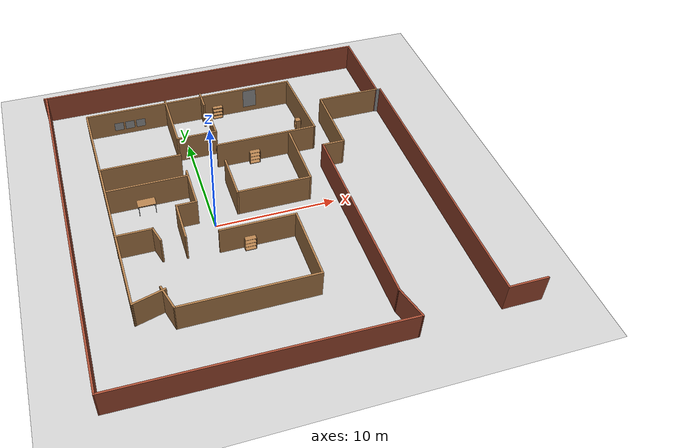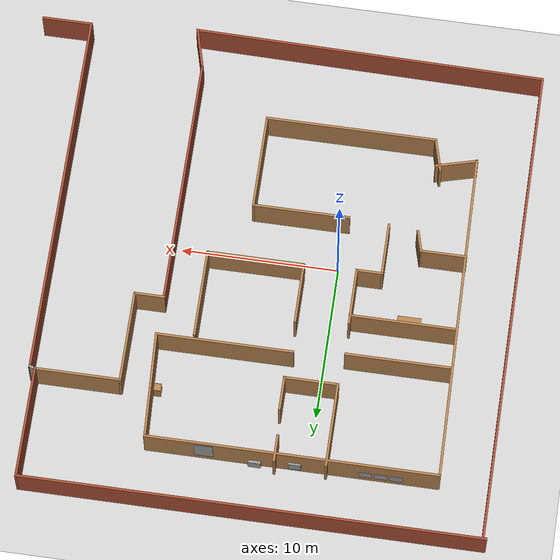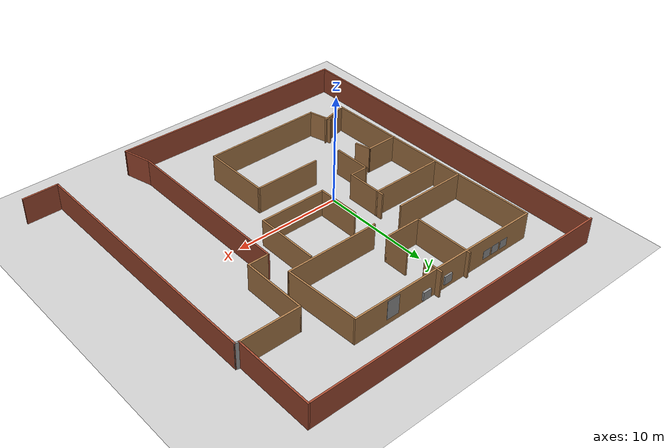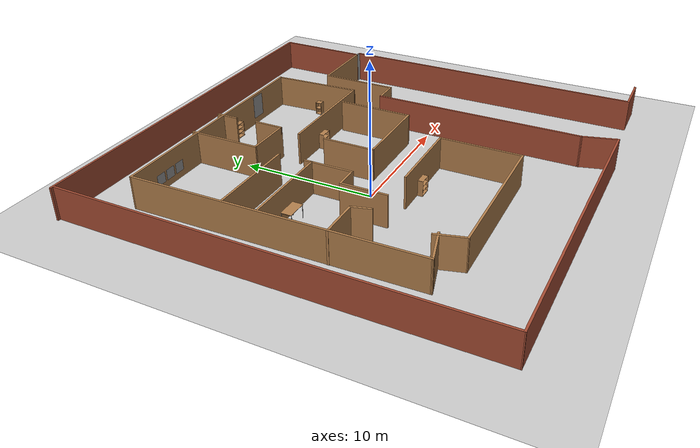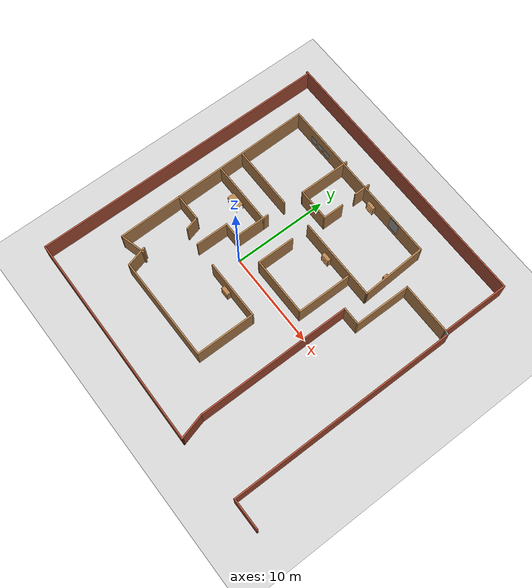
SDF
<sdf version="1.7">
 <world name="default">
  <light name="sun" type="directional">
   <pose>0 0 10 0 -0 0</pose>
   <diffuse>0.8 0.8 0.8 1</diffuse>
   <specular>0.2 0.2 0.2 1</specular>
   <attenuation>
    <range>1000</range>
    <constant>0.9</constant>
    <linear>0.01</linear>
    <quadratic>0.001</quadratic>
   </attenuation>
   <direction>-0.5 0.1 -0.9</direction>
   <spot><inner_angle>0</inner_angle><outer_angle>0</outer_angle><falloff>0</falloff></spot>
  </light>
  <model name="ground_plane">
   <static>1</static>
   <link name="link">
    <collision name="collision">
     <geometry><plane><normal>0 0 1</normal><size>100 100</size></plane></geometry>
     <surface><friction><ode><mu>100</mu><mu2>50</mu2></ode></friction></surface>
    </collision>
    <visual name="visual">
     <cast_shadows>0</cast_shadows>
     <geometry><plane><normal>0 0 1</normal><size>100 100</size></plane></geometry>
     <material>
      <script><uri>file://media/materials/scripts/gazebo.material</uri><name>Gazebo/Grey</name></script>
     </material>
    </visual>
   </link>
  </model>
  <gravity>0 0 -9.8</gravity>
  <magnetic_field>6e-06 2.3e-05 -4.2e-05</magnetic_field>
  <atmosphere type="adiabatic"/>
  <physics type="ode">
   <max_step_size>0.001</max_step_size>
   <real_time_factor>1</real_time_factor>
   <real_time_update_rate>1000</real_time_update_rate>
  </physics>
  <scene><ambient>0.4 0.4 0.4 1</ambient><background>0.7 0.7 0.7 1</background><shadows>1</shadows></scene>
  <audio><device>default</device></audio>
  <spherical_coordinates>
   <surface_model>EARTH_WGS84</surface_model>
   <latitude_deg>0</latitude_deg>
   <longitude_deg>0</longitude_deg>
   <elevation>0</elevation>
   <heading_deg>0</heading_deg>
  </spherical_coordinates>
  <model name="just">
   <pose>4.80824 1.42703 0 0 -0 0</pose>
   <link name="Wall_0">
    <collision name="Wall_0_Collision">
     <geometry><box><size>31.25 0.15 2.5</size></box></geometry>
     <pose>0 0 1.25 0 -0 0</pose>
    </collision>
    <visual name="Wall_0_Visual">
     <pose>0 0 1.25 0 -0 0</pose>
     <geometry><box><size>31.25 0.15 2.5</size></box></geometry>
     <material>
      <script><uri>file://media/materials/scripts/gazebo.material</uri><name>Gazebo/Bricks</name></script>
      <ambient>1 1 1 1</ambient>
     </material>
     <meta><layer>0</layer></meta>
    </visual>
    <pose>-16.0957 0.111377 0 0 -0 -1.5708</pose>
   </link>
   <link name="Wall_1">
    <collision name="Wall_1_Collision">
     <geometry><box><size>22.5521 0.15 2.5</size></box></geometry>
     <pose>0 0 1.25 0 -0 0</pose>
    </collision>
    <visual name="Wall_1_Visual">
     <pose>0 0 1.25 0 -0 0</pose>
     <geometry><box><size>22.5521 0.15 2.5</size></box></geometry>
     <material>
      <script><uri>file://media/materials/scripts/gazebo.material</uri><name>Gazebo/Bricks</name></script>
      <ambient>1 1 1 1</ambient>
     </material>
     <meta><layer>0</layer></meta>
    </visual>
    <pose>-4.89589 -15.6054 0 0 -0 -0.014894</pose>
   </link>
   <link name="Wall_10">
    <collision name="Wall_10_Collision">
     <geometry><box><size>0.5 0.15 2.5</size></box></geometry>
     <pose>0 0 1.25 0 -0 0</pose>
    </collision>
    <visual name="Wall_10_Visual">
     <pose>0 0 1.25 0 -0 0</pose>
     <geometry><box><size>0.5 0.15 2.5</size></box></geometry>
     <material>
      <script><uri>file://media/materials/scripts/gazebo.material</uri><name>Gazebo/Grey</name></script>
      <ambient>1 1 1 1</ambient>
     </material>
     <meta><layer>0</layer></meta>
    </visual>
    <pose>13 8.64384 0 0 -0 -0.261799</pose>
   </link>
   <link name="Wall_11">
    <collision name="Wall_11_Collision">
     <geometry><box><size>24 0.15 2.5</size></box></geometry>
     <pose>0 0 1.25 0 -0 0</pose>
    </collision>
    <visual name="Wall_11_Visual">
     <pose>0 0 1.25 0 -0 0</pose>
     <geometry><box><size>24 0.15 2.5</size></box></geometry>
     <material>
      <script><uri>file://media/materials/scripts/gazebo.material</uri><name>Gazebo/Bricks</name></script>
      <ambient>1 1 1 1</ambient>
     </material>
     <meta><layer>0</layer></meta>
    </visual>
    <pose>13.169 -3.32646 0 0 -0 -1.5708</pose>
   </link>
   <link name="Wall_12">
    <collision name="Wall_12_Collision">
     <geometry><box><size>3.25 0.15 2.5</size></box></geometry>
     <pose>0 0 1.25 0 -0 0</pose>
    </collision>
    <visual name="Wall_12_Visual">
     <pose>0 0 1.25 0 -0 0</pose>
     <geometry><box><size>3.25 0.15 2.5</size></box></geometry>
     <material>
      <script><uri>file://media/materials/scripts/gazebo.material</uri><name>Gazebo/Bricks</name></script>
      <ambient>1 1 1 1</ambient>
     </material>
     <meta><layer>0</layer></meta>
    </visual>
    <pose>14.719 -15.2515 0 0 -0 0</pose>
   </link>
   <link name="Wall_14">
    <collision name="Wall_14_Collision">
     <geometry><box><size>18.5 0.15 2.5</size></box></geometry>
     <pose>0 0 1.25 0 -0 0</pose>
    </collision>
    <visual name="Wall_14_Visual">
     <pose>0 0 1.25 0 -0 0</pose>
     <geometry><box><size>18.5 0.15 2.5</size></box></geometry>
     <material>
      <script><uri>file://media/materials/scripts/gazebo.material</uri><name>Gazebo/Wood</name></script>
      <ambient>1 1 1 1</ambient>
     </material>
     <meta><layer>0</layer></meta>
    </visual>
    <pose>-3.77839 12.1209 0 0 -0 0</pose>
   </link>
   <link name="Wall_15">
    <collision name="Wall_15_Collision">
     <geometry><box><size>6.82736 0.15 2.5</size></box></geometry>
     <pose>0 0 1.25 0 -0 0</pose>
    </collision>
    <visual name="Wall_15_Visual">
     <pose>0 0 1.25 0 -0 0</pose>
     <geometry><box><size>6.82736 0.15 2.5</size></box></geometry>
     <material>
      <script><uri>file://media/materials/scripts/gazebo.material</uri><name>Gazebo/Wood</name></script>
      <ambient>1 1 1 1</ambient>
     </material>
     <meta><layer>0</layer></meta>
    </visual>
    <pose>5.55803 8.67853 0 0 -0 -1.52243</pose>
   </link>
   <link name="Wall_16">
    <collision name="Wall_16_Collision">
     <geometry><box><size>8.75 0.15 2.5</size></box></geometry>
     <pose>0 0 1.25 0 -0 0</pose>
    </collision>
    <visual name="Wall_16_Visual">
     <pose>0 0 1.25 0 -0 0</pose>
     <geometry><box><size>8.75 0.15 2.5</size></box></geometry>
     <material>
      <script><uri>file://media/materials/scripts/gazebo.material</uri><name>Gazebo/Wood</name></script>
      <ambient>1 1 1 1</ambient>
     </material>
     <meta><layer>0</layer></meta>
    </visual>
    <pose>1.41945 5.34376 0 0 -0 3.14159</pose>
   </link>
   <link name="Wall_18">
    <collision name="Wall_18_Collision">
     <geometry><box><size>21.322 0.15 2.5</size></box></geometry>
     <pose>0 0 1.25 0 -0 0</pose>
    </collision>
    <visual name="Wall_18_Visual">
     <pose>0 0 1.25 0 -0 0</pose>
     <geometry><box><size>21.322 0.15 2.5</size></box></geometry>
     <material>
      <script><uri>file://media/materials/scripts/gazebo.material</uri><name>Gazebo/Wood</name></script>
      <ambient>1 1 1 1</ambient>
     </material>
     <meta><layer>0</layer></meta>
    </visual>
    <pose>-12.792 1.42853 0 0 -0 -1.55555</pose>
   </link>
   <link name="Wall_19">
    <collision name="Wall_19_Collision">
     <geometry><box><size>2.75 0.15 2.5</size></box></geometry>
     <pose>0 0 1.25 0 -0 0</pose>
    </collision>
    <visual name="Wall_19_Visual">
     <pose>0 0 1.25 0 -0 0</pose>
     <geometry><box><size>2.75 0.15 2.5</size></box></geometry>
     <material>
      <script><uri>file://media/materials/scripts/gazebo.material</uri><name>Gazebo/Wood</name></script>
      <ambient>1 1 1 1</ambient>
     </material>
     <meta><layer>0</layer></meta>
    </visual>
    <pose>-11.3748 -8.81978 0 0 -0 0.261799</pose>
   </link>
   <link name="Wall_2">
    <collision name="Wall_2_Collision">
     <geometry><box><size>2.75 0.15 2.5</size></box></geometry>
     <pose>0 0 1.25 0 -0 0</pose>
    </collision>
    <visual name="Wall_2_Visual">
     <pose>0 0 1.25 0 -0 0</pose>
     <geometry><box><size>2.75 0.15 2.5</size></box></geometry>
     <material>
      <script><uri>file://media/materials/scripts/gazebo.material</uri><name>Gazebo/Bricks</name></script>
      <ambient>1 1 1 1</ambient>
     </material>
     <meta><layer>0</layer></meta>
    </visual>
    <pose>5.96743 -14.5166 0 0 -0 1.8326</pose>
   </link>
   <link name="Wall_21">
    <collision name="Wall_21_Collision">
     <geometry><box><size>2.25 0.15 2.5</size></box></geometry>
     <pose>0 0 1.25 0 -0 0</pose>
    </collision>
    <visual name="Wall_21_Visual">
     <pose>0 0 1.25 0 -0 0</pose>
     <geometry><box><size>2.25 0.15 2.5</size></box></geometry>
     <material>
      <script><uri>file://media/materials/scripts/gazebo.material</uri><name>Gazebo/Wood</name></script>
      <ambient>1 1 1 1</ambient>
     </material>
     <meta><layer>0</layer></meta>
    </visual>
    <pose>-10.1312 -9.23747 0 0 -0 -1.309</pose>
   </link>
   <link name="Wall_22">
    <collision name="Wall_22_Collision">
     <geometry><box><size>11 0.15 2.5</size></box></geometry>
     <pose>0 0 1.25 0 -0 0</pose>
    </collision>
    <visual name="Wall_22_Visual">
     <pose>0 0 1.25 0 -0 0</pose>
     <geometry><box><size>11 0.15 2.5</size></box></geometry>
     <material>
      <script><uri>file://media/materials/scripts/gazebo.material</uri><name>Gazebo/Wood</name></script>
      <ambient>1 1 1 1</ambient>
     </material>
     <meta><layer>0</layer></meta>
    </visual>
    <pose>-4.43445 -10.2517 0 0 -0 0</pose>
   </link>
   <link name="Wall_23">
    <collision name="Wall_23_Collision">
     <geometry><box><size>6.25 0.15 2.5</size></box></geometry>
     <pose>0 0 1.25 0 -0 0</pose>
    </collision>
    <visual name="Wall_23_Visual">
     <pose>0 0 1.25 0 -0 0</pose>
     <geometry><box><size>6.25 0.15 2.5</size></box></geometry>
     <material>
      <script><uri>file://media/materials/scripts/gazebo.material</uri><name>Gazebo/Wood</name></script>
      <ambient>1 1 1 1</ambient>
     </material>
     <meta><layer>0</layer></meta>
    </visual>
    <pose>0.990551 -7.20169 0 0 -0 1.5708</pose>
   </link>
   <link name="Wall_24">
    <collision name="Wall_24_Collision">
     <geometry><box><size>6.25 0.15 2.5</size></box></geometry>
     <pose>0 0 1.25 0 -0 0</pose>
    </collision>
    <visual name="Wall_24_Visual">
     <pose>0 0 1.25 0 -0 0</pose>
     <geometry><box><size>6.25 0.15 2.5</size></box></geometry>
     <material>
      <script><uri>file://media/materials/scripts/gazebo.material</uri><name>Gazebo/Wood</name></script>
      <ambient>1 1 1 1</ambient>
     </material>
     <meta><layer>0</layer></meta>
    </visual>
    <pose>-2.05945 -4.15169 0 0 -0 3.14159</pose>
   </link>
   <link name="Wall_26">
    <collision name="Wall_26_Collision">
     <geometry><box><size>3.5 0.15 2.5</size></box></geometry>
     <pose>0 0 1.25 0 -0 0</pose>
    </collision>
    <visual name="Wall_26_Visual">
     <pose>0 0 1.25 0 -0 0</pose>
     <geometry><box><size>3.5 0.15 2.5</size></box></geometry>
     <material>
      <script><uri>file://media/materials/scripts/gazebo.material</uri><name>Gazebo/Wood</name></script>
      <ambient>1 1 1 1</ambient>
     </material>
     <meta><layer>0</layer></meta>
    </visual>
    <pose>-7.68037 -2.34059 0 0 -0 1.5708</pose>
   </link>
   <link name="Wall_27">
    <collision name="Wall_27_Collision">
     <geometry><box><size>1.75 0.15 2.5</size></box></geometry>
     <pose>0 0 1.25 0 -0 0</pose>
    </collision>
    <visual name="Wall_27_Visual">
     <pose>0 0 1.25 0 -0 0</pose>
     <geometry><box><size>1.75 0.15 2.5</size></box></geometry>
     <material>
      <script><uri>file://media/materials/scripts/gazebo.material</uri><name>Gazebo/Wood</name></script>
      <ambient>1 1 1 1</ambient>
     </material>
     <meta><layer>0</layer></meta>
    </visual>
    <pose>-6.88037 -0.665594 0 0 -0 0</pose>
   </link>
   <link name="Wall_28">
    <collision name="Wall_28_Collision">
     <geometry><box><size>3.75 0.15 2.5</size></box></geometry>
     <pose>0 0 1.25 0 -0 0</pose>
    </collision>
    <visual name="Wall_28_Visual">
     <pose>0 0 1.25 0 -0 0</pose>
     <geometry><box><size>3.75 0.15 2.5</size></box></geometry>
     <material>
      <script><uri>file://media/materials/scripts/gazebo.material</uri><name>Gazebo/Wood</name></script>
      <ambient>1 1 1 1</ambient>
     </material>
     <meta><layer>0</layer></meta>
    </visual>
    <pose>-6.08037 1.13441 0 0 -0 1.5708</pose>
   </link>
   <link name="Wall_3">
    <collision name="Wall_3_Collision">
     <geometry><box><size>16.25 0.15 2.5</size></box></geometry>
     <pose>0 0 1.25 0 -0 0</pose>
    </collision>
    <visual name="Wall_3_Visual">
     <pose>0 0 1.25 0 -0 0</pose>
     <geometry><box><size>16.25 0.15 2.5</size></box></geometry>
     <material>
      <script><uri>file://media/materials/scripts/gazebo.material</uri><name>Gazebo/Bricks</name></script>
      <ambient>1 1 1 1</ambient>
     </material>
     <meta><layer>0</layer></meta>
    </visual>
    <pose>5.63096 -5.21087 0 0 -0 1.5708</pose>
   </link>
   <link name="Wall_30">
    <collision name="Wall_30_Collision">
     <geometry><box><size>6.75 0.15 2.5</size></box></geometry>
     <pose>0 0 1.25 0 -0 0</pose>
    </collision>
    <visual name="Wall_30_Visual">
     <pose>0 0 1.25 0 -0 0</pose>
     <geometry><box><size>6.75 0.15 2.5</size></box></geometry>
     <material>
      <script><uri>file://media/materials/scripts/gazebo.material</uri><name>Gazebo/Wood</name></script>
      <ambient>1 1 1 1</ambient>
     </material>
     <meta><layer>0</layer></meta>
    </visual>
    <pose>-9.37156 2.41964 0 0 -0 3.14159</pose>
   </link>
   <link name="Wall_32">
    <collision name="Wall_32_Collision">
     <geometry><box><size>3 0.15 2.5</size></box></geometry>
     <pose>0 0 1.25 0 -0 0</pose>
    </collision>
    <visual name="Wall_32_Visual">
     <pose>0 0 1.25 0 -0 0</pose>
     <geometry><box><size>3 0.15 2.5</size></box></geometry>
     <material>
      <script><uri>file://media/materials/scripts/gazebo.material</uri><name>Gazebo/Wood</name></script>
      <ambient>1 1 1 1</ambient>
     </material>
     <meta><layer>0</layer></meta>
    </visual>
    <pose>-11.3293 -2.53054 0 0 -0 0</pose>
   </link>
   <link name="Wall_33">
    <collision name="Wall_33_Collision">
     <geometry><box><size>1.5 0.15 2.5</size></box></geometry>
     <pose>0 0 1.25 0 -0 0</pose>
    </collision>
    <visual name="Wall_33_Visual">
     <pose>0 0 1.25 0 -0 0</pose>
     <geometry><box><size>1.5 0.15 2.5</size></box></geometry>
     <material>
      <script><uri>file://media/materials/scripts/gazebo.material</uri><name>Gazebo/Wood</name></script>
      <ambient>1 1 1 1</ambient>
     </material>
     <meta><layer>0</layer></meta>
    </visual>
    <pose>-9.7296 -3.18254 0 0 -0 -1.309</pose>
   </link>
   <link name="Wall_35">
    <collision name="Wall_35_Collision">
     <geometry><box><size>6.75 0.15 2.5</size></box></geometry>
     <pose>0 0 1.25 0 -0 0</pose>
    </collision>
    <visual name="Wall_35_Visual">
     <pose>0 0 1.25 0 -0 0</pose>
     <geometry><box><size>6.75 0.15 2.5</size></box></geometry>
     <material>
      <script><uri>file://media/materials/scripts/gazebo.material</uri><name>Gazebo/Wood</name></script>
      <ambient>1 1 1 1</ambient>
     </material>
     <meta><layer>0</layer></meta>
    </visual>
    <pose>-9.4543 5.01849 0 0 -0 0</pose>
   </link>
   <link name="Wall_37">
    <collision name="Wall_37_Collision">
     <geometry><box><size>4 0.15 2.5</size></box></geometry>
     <pose>0 0 1.25 0 -0 0</pose>
    </collision>
    <visual name="Wall_37_Visual">
     <pose>0 0 1.25 0 -0 0</pose>
     <geometry><box><size>4 0.15 2.5</size></box></geometry>
     <material>
      <script><uri>file://media/materials/scripts/gazebo.material</uri><name>Gazebo/Wood</name></script>
      <ambient>1 1 1 1</ambient>
     </material>
     <meta><layer>0</layer></meta>
    </visual>
    <pose>-2.73019 1.36092 0 0 -0 -1.5708</pose>
   </link>
   <link name="Wall_38">
    <collision name="Wall_38_Collision">
     <geometry><box><size>6.25 0.15 2.5</size></box></geometry>
     <pose>0 0 1.25 0 -0 0</pose>
    </collision>
    <visual name="Wall_38_Visual">
     <pose>0 0 1.25 0 -0 0</pose>
     <geometry><box><size>6.25 0.15 2.5</size></box></geometry>
     <material>
      <script><uri>file://media/materials/scripts/gazebo.material</uri><name>Gazebo/Wood</name></script>
      <ambient>1 1 1 1</ambient>
     </material>
     <meta><layer>0</layer></meta>
    </visual>
    <pose>0.319812 -0.564077 0 0 -0 0</pose>
   </link>
   <link name="Wall_39">
    <collision name="Wall_39_Collision">
     <geometry><box><size>5.75 0.15 2.5</size></box></geometry>
     <pose>0 0 1.25 0 -0 0</pose>
    </collision>
    <visual name="Wall_39_Visual">
     <pose>0 0 1.25 0 -0 0</pose>
     <geometry><box><size>5.75 0.15 2.5</size></box></geometry>
     <material>
      <script><uri>file://media/materials/scripts/gazebo.material</uri><name>Gazebo/Wood</name></script>
      <ambient>1 1 1 1</ambient>
     </material>
     <meta><layer>0</layer></meta>
    </visual>
    <pose>3.36981 2.23592 0 0 -0 1.5708</pose>
   </link>
   <link name="Wall_4">
    <collision name="Wall_4_Collision">
     <geometry><box><size>2 0.15 2.5</size></box></geometry>
     <pose>0 0 1.25 0 -0 0</pose>
    </collision>
    <visual name="Wall_4_Visual">
     <pose>0 0 1.25 0 -0 0</pose>
     <geometry><box><size>2 0.15 2.5</size></box></geometry>
     <material>
      <script><uri>file://media/materials/scripts/gazebo.material</uri><name>Gazebo/Wood</name></script>
      <ambient>1 1 1 1</ambient>
     </material>
     <meta><layer>0</layer></meta>
    </visual>
    <pose>6.55596 2.83913 0 0 -0 0</pose>
   </link>
   <link name="Wall_41">
    <collision name="Wall_41_Collision">
     <geometry><box><size>5.5 0.15 2.5</size></box></geometry>
     <pose>0 0 1.25 0 -0 0</pose>
    </collision>
    <visual name="Wall_41_Visual">
     <pose>0 0 1.25 0 -0 0</pose>
     <geometry><box><size>5.5 0.15 2.5</size></box></geometry>
     <material>
      <script><uri>file://media/materials/scripts/gazebo.material</uri><name>Gazebo/Wood</name></script>
      <ambient>1 1 1 1</ambient>
     </material>
     <meta><layer>0</layer></meta>
    </visual>
    <pose>-5.94781 9.76876 0 0 -0 -1.5708</pose>
   </link>
   <link name="Wall_42">
    <collision name="Wall_42_Collision">
     <geometry><box><size>3.5 0.15 2.5</size></box></geometry>
     <pose>0 0 1.25 0 -0 0</pose>
    </collision>
    <visual name="Wall_42_Visual">
     <pose>0 0 1.25 0 -0 0</pose>
     <geometry><box><size>3.5 0.15 2.5</size></box></geometry>
     <material>
      <script><uri>file://media/materials/scripts/gazebo.material</uri><name>Gazebo/Wood</name></script>
      <ambient>1 1 1 1</ambient>
     </material>
     <meta><layer>0</layer></meta>
    </visual>
    <pose>-4.27281 7.09376 0 0 -0 0</pose>
   </link>
   <link name="Wall_43">
    <collision name="Wall_43_Collision">
     <geometry><box><size>2.25 0.15 2.5</size></box></geometry>
     <pose>0 0 1.25 0 -0 0</pose>
    </collision>
    <visual name="Wall_43_Visual">
     <pose>0 0 1.25 0 -0 0</pose>
     <geometry><box><size>2.25 0.15 2.5</size></box></geometry>
     <material>
      <script><uri>file://media/materials/scripts/gazebo.material</uri><name>Gazebo/Wood</name></script>
      <ambient>1 1 1 1</ambient>
     </material>
     <meta><layer>0</layer></meta>
    </visual>
    <pose>-2.59781 8.14376 0 0 -0 1.5708</pose>
   </link>
   <link name="Wall_45">
    <collision name="Wall_45_Collision">
     <geometry><box><size>1.75 0.15 2.5</size></box></geometry>
     <pose>0 0 1.25 0 -0 0</pose>
    </collision>
    <visual name="Wall_45_Visual">
     <pose>0 0 1.25 0 -0 0</pose>
     <geometry><box><size>1.75 0.15 2.5</size></box></geometry>
     <material>
      <script><uri>file://media/materials/scripts/gazebo.material</uri><name>Gazebo/Wood</name></script>
      <ambient>1 1 1 1</ambient>
     </material>
     <meta><layer>0</layer></meta>
    </visual>
    <pose>-2.73019 11.7675 0 0 -0 -1.5708</pose>
   </link>
   <link name="Wall_5">
    <collision name="Wall_5_Collision">
     <geometry><box><size>6 0.15 2.5</size></box></geometry>
     <pose>0 0 1.25 0 -0 0</pose>
    </collision>
    <visual name="Wall_5_Visual">
     <pose>0 0 1.25 0 -0 0</pose>
     <geometry><box><size>6 0.15 2.5</size></box></geometry>
     <material>
      <script><uri>file://media/materials/scripts/gazebo.material</uri><name>Gazebo/Wood</name></script>
      <ambient>1 1 1 1</ambient>
     </material>
     <meta><layer>0</layer></meta>
    </visual>
    <pose>7.48096 5.76413 0 0 -0 1.5708</pose>
   </link>
   <link name="Wall_6">
    <collision name="Wall_6_Collision">
     <geometry><box><size>5.5 0.15 2.5</size></box></geometry>
     <pose>0 0 1.25 0 -0 0</pose>
    </collision>
    <visual name="Wall_6_Visual">
     <pose>0 0 1.25 0 -0 0</pose>
     <geometry><box><size>5.5 0.15 2.5</size></box></geometry>
     <material>
      <script><uri>file://media/materials/scripts/gazebo.material</uri><name>Gazebo/Wood</name></script>
      <ambient>1 1 1 1</ambient>
     </material>
     <meta><layer>0</layer></meta>
    </visual>
    <pose>10.156 8.68913 0 0 -0 0</pose>
   </link>
   <link name="Wall_7">
    <collision name="Wall_7_Collision">
     <geometry><box><size>7.25 0.15 2.5</size></box></geometry>
     <pose>0 0 1.25 0 -0 0</pose>
    </collision>
    <visual name="Wall_7_Visual">
     <pose>0 0 1.25 0 -0 0</pose>
     <geometry><box><size>7.25 0.15 2.5</size></box></geometry>
     <material>
      <script><uri>file://media/materials/scripts/gazebo.material</uri><name>Gazebo/Bricks</name></script>
      <ambient>1 1 1 1</ambient>
     </material>
     <meta><layer>0</layer></meta>
    </visual>
    <pose>12.831 12.2391 0 0 -0 1.5708</pose>
   </link>
   <link name="Wall_8">
    <collision name="Wall_8_Collision">
     <geometry><box><size>29.25 0.15 2.5</size></box></geometry>
     <pose>0 0 1.25 0 -0 0</pose>
    </collision>
    <visual name="Wall_8_Visual">
     <pose>0 0 1.25 0 -0 0</pose>
     <geometry><box><size>29.25 0.15 2.5</size></box></geometry>
     <material>
      <script><uri>file://media/materials/scripts/gazebo.material</uri><name>Gazebo/Bricks</name></script>
      <ambient>1 1 1 1</ambient>
     </material>
     <meta><layer>0</layer></meta>
    </visual>
    <pose>-1.71904 15.7891 0 0 -0 3.14159</pose>
   </link>
   <link name="Window_1">
    <collision name="Window_1_Collision">
     <geometry><box><size>0.8 0.17 0.8</size></box></geometry>
     <pose>0 0 0.4 0 -0 0</pose>
    </collision>
    <visual name="Window_1_Visual">
     <pose>0 0 0.4 0 -0 0</pose>
     <geometry><box><size>0.8 0.17 0.8</size></box></geometry>
     <material>
      <script><uri>file://media/materials/scripts/gazebo.material</uri><name>Gazebo/Grey</name></script>
     </material>
    </visual>
    <pose>-10.3154 12.1291 0.5 0 -0 0</pose>
   </link>
   <link name="Window_2">
    <collision name="Window_2_Collision">
     <geometry><box><size>0.8 0.17 0.8</size></box></geometry>
     <pose>0 0 0.4 0 -0 0</pose>
    </collision>
    <visual name="Window_2_Visual">
     <pose>0 0 0.4 0 -0 0</pose>
     <geometry><box><size>0.8 0.17 0.8</size></box></geometry>
     <material>
      <script><uri>file://media/materials/scripts/gazebo.material</uri><name>Gazebo/Grey</name></script>
     </material>
    </visual>
    <pose>-9.34688 12.1291 0.5 0 -0 0</pose>
   </link>
   <link name="Window_3">
    <collision name="Window_3_Collision">
     <geometry><box><size>0.8 0.17 0.8</size></box></geometry>
     <pose>0 0 0.4 0 -0 0</pose>
    </collision>
    <visual name="Window_3_Visual">
     <pose>0 0 0.4 0 -0 0</pose>
     <geometry><box><size>0.8 0.17 0.8</size></box></geometry>
     <material>
      <script><uri>file://media/materials/scripts/gazebo.material</uri><name>Gazebo/Grey</name></script>
     </material>
    </visual>
    <pose>-8.37837 12.1291 0.5 0 -0 0</pose>
   </link>
   <link name="Window_4">
    <collision name="Window_4_Collision">
     <geometry><box><size>0.8 0.17 0.8</size></box></geometry>
     <pose>0 0 0.4 0 -0 0</pose>
    </collision>
    <visual name="Window_4_Visual">
     <pose>0 0 0.4 0 -0 0</pose>
     <geometry><box><size>0.8 0.17 0.8</size></box></geometry>
     <material>
      <script><uri>file://media/materials/scripts/gazebo.material</uri><name>Gazebo/Grey</name></script>
     </material>
    </visual>
    <pose>-3.96625 12.2367 0.5 0 -0 0</pose>
   </link>
   <link name="Window_5">
    <collision name="Window_5_Collision">
     <geometry><box><size>0.8 0.17 0.8</size></box></geometry>
     <pose>0 0 0.4 0 -0 0</pose>
    </collision>
    <visual name="Window_5_Visual">
     <pose>0 0 0.4 0 -0 0</pose>
     <geometry><box><size>0.8 0.17 0.8</size></box></geometry>
     <material>
      <script><uri>file://media/materials/scripts/gazebo.material</uri><name>Gazebo/Grey</name></script>
     </material>
    </visual>
    <pose>-1.49116 12.4519 0.5 0 -0 0</pose>
   </link>
   <link name="Window_6">
    <collision name="Window_6_Collision">
     <geometry><box><size>1.2 0.17 1.8</size></box></geometry>
     <pose>0 0 0.9 0 -0 0</pose>
    </collision>
    <visual name="Window_6_Visual">
     <pose>0 0 0.9 0 -0 0</pose>
     <geometry><box><size>1.2 0.17 1.8</size></box></geometry>
     <material>
      <script><uri>file://media/materials/scripts/gazebo.material</uri><name>Gazebo/Grey</name></script>
     </material>
    </visual>
    <pose>1.73722 12.1291 0.5 0 -0 0</pose>
   </link>
   <static>1</static>
  </model>
  <model name="bookshelf">
   <static>1</static>
   <link name="link">
    <inertial><mass>1</mass></inertial>
    <collision name="back">
     <pose>0 0.005 0.6 0 -0 0</pose>
     <geometry><box><size>0.9 0.01 1.2</size></box></geometry>
    </collision>
    <visual name="visual1">
     <pose>0 0.005 0.6 0 -0 0</pose>
     <geometry><box><size>0.9 0.01 1.2</size></box></geometry>
     <material>
      <script><uri>file://media/materials/scripts/gazebo.material</uri><name>Gazebo/Wood</name></script>
     </material>
    </visual>
    <collision name="left_side">
     <pose>0.45 -0.195 0.6 0 -0 0</pose>
     <geometry><box><size>0.02 0.4 1.2</size></box></geometry>
    </collision>
    <visual name="visual2">
     <pose>0.45 -0.195 0.6 0 -0 0</pose>
     <geometry><box><size>0.02 0.4 1.2</size></box></geometry>
     <material>
      <script><uri>file://media/materials/scripts/gazebo.material</uri><name>Gazebo/Wood</name></script>
     </material>
    </visual>
    <collision name="right_side">
     <pose>-0.45 -0.195 0.6 0 -0 0</pose>
     <geometry><box><size>0.02 0.4 1.2</size></box></geometry>
    </collision>
    <visual name="visual3">
     <pose>-0.45 -0.195 0.6 0 -0 0</pose>
     <geometry><box><size>0.02 0.4 1.2</size></box></geometry>
     <material>
      <script><uri>file://media/materials/scripts/gazebo.material</uri><name>Gazebo/Wood</name></script>
     </material>
    </visual>
    <collision name="bottom">
     <pose>0 -0.195 0.03 0 -0 0</pose>
     <geometry><box><size>0.88 0.4 0.06</size></box></geometry>
    </collision>
    <visual name="visual4">
     <pose>0 -0.195 0.03 0 -0 0</pose>
     <geometry><box><size>0.88 0.4 0.06</size></box></geometry>
     <material>
      <script><uri>file://media/materials/scripts/gazebo.material</uri><name>Gazebo/Wood</name></script>
     </material>
    </visual>
    <collision name="top">
     <pose>0 -0.195 1.19 0 -0 0</pose>
     <geometry><box><size>0.88 0.4 0.02</size></box></geometry>
    </collision>
    <visual name="visual5">
     <pose>0 -0.195 1.19 0 -0 0</pose>
     <geometry><box><size>0.88 0.4 0.02</size></box></geometry>
     <material>
      <script><uri>file://media/materials/scripts/gazebo.material</uri><name>Gazebo/Wood</name></script>
     </material>
    </visual>
    <collision name="low_shelf">
     <pose>0 -0.195 0.43 0 -0 0</pose>
     <geometry><box><size>0.88 0.4 0.02</size></box></geometry>
    </collision>
    <visual name="visual6">
     <pose>0 -0.195 0.43 0 -0 0</pose>
     <geometry><box><size>0.88 0.4 0.02</size></box></geometry>
     <material>
      <script><uri>file://media/materials/scripts/gazebo.material</uri><name>Gazebo/Wood</name></script>
     </material>
    </visual>
    <collision name="high_shelf">
     <pose>0 -0.195 0.8 0 -0 0</pose>
     <geometry><box><size>0.88 0.4 0.02</size></box></geometry>
    </collision>
    <visual name="visual7">
     <pose>0 -0.195 0.8 0 -0 0</pose>
     <geometry><box><size>0.88 0.4 0.02</size></box></geometry>
     <material>
      <script><uri>file://media/materials/scripts/gazebo.material</uri><name>Gazebo/Wood</name></script>
     </material>
    </visual>
   </link>
   <pose>2.02941 -2.81261 0 0 -0 0</pose>
  </model>
  <model name="bookshelf_0">
   <static>1</static>
   <link name="link">
    <inertial><mass>1</mass></inertial>
    <collision name="back">
     <pose>0 0.005 0.6 0 -0 0</pose>
     <geometry><box><size>0.9 0.01 1.2</size></box></geometry>
    </collision>
    <visual name="visual1">
     <pose>0 0.005 0.6 0 -0 0</pose>
     <geometry><box><size>0.9 0.01 1.2</size></box></geometry>
     <material>
      <script><uri>file://media/materials/scripts/gazebo.material</uri><name>Gazebo/Wood</name></script>
     </material>
    </visual>
    <collision name="left_side">
     <pose>0.45 -0.195 0.6 0 -0 0</pose>
     <geometry><box><size>0.02 0.4 1.2</size></box></geometry>
    </collision>
    <visual name="visual2">
     <pose>0.45 -0.195 0.6 0 -0 0</pose>
     <geometry><box><size>0.02 0.4 1.2</size></box></geometry>
     <material>
      <script><uri>file://media/materials/scripts/gazebo.material</uri><name>Gazebo/Wood</name></script>
     </material>
    </visual>
    <collision name="right_side">
     <pose>-0.45 -0.195 0.6 0 -0 0</pose>
     <geometry><box><size>0.02 0.4 1.2</size></box></geometry>
    </collision>
    <visual name="visual3">
     <pose>-0.45 -0.195 0.6 0 -0 0</pose>
     <geometry><box><size>0.02 0.4 1.2</size></box></geometry>
     <material>
      <script><uri>file://media/materials/scripts/gazebo.material</uri><name>Gazebo/Wood</name></script>
     </material>
    </visual>
    <collision name="bottom">
     <pose>0 -0.195 0.03 0 -0 0</pose>
     <geometry><box><size>0.88 0.4 0.06</size></box></geometry>
    </collision>
    <visual name="visual4">
     <pose>0 -0.195 0.03 0 -0 0</pose>
     <geometry><box><size>0.88 0.4 0.06</size></box></geometry>
     <material>
      <script><uri>file://media/materials/scripts/gazebo.material</uri><name>Gazebo/Wood</name></script>
     </material>
    </visual>
    <collision name="top">
     <pose>0 -0.195 1.19 0 -0 0</pose>
     <geometry><box><size>0.88 0.4 0.02</size></box></geometry>
    </collision>
    <visual name="visual5">
     <pose>0 -0.195 1.19 0 -0 0</pose>
     <geometry><box><size>0.88 0.4 0.02</size></box></geometry>
     <material>
      <script><uri>file://media/materials/scripts/gazebo.material</uri><name>Gazebo/Wood</name></script>
     </material>
    </visual>
    <collision name="low_shelf">
     <pose>0 -0.195 0.43 0 -0 0</pose>
     <geometry><box><size>0.88 0.4 0.02</size></box></geometry>
    </collision>
    <visual name="visual6">
     <pose>0 -0.195 0.43 0 -0 0</pose>
     <geometry><box><size>0.88 0.4 0.02</size></box></geometry>
     <material>
      <script><uri>file://media/materials/scripts/gazebo.material</uri><name>Gazebo/Wood</name></script>
     </material>
    </visual>
    <collision name="high_shelf">
     <pose>0 -0.195 0.8 0 -0 0</pose>
     <geometry><box><size>0.88 0.4 0.02</size></box></geometry>
    </collision>
    <visual name="visual7">
     <pose>0 -0.195 0.8 0 -0 0</pose>
     <geometry><box><size>0.88 0.4 0.02</size></box></geometry>
     <material>
      <script><uri>file://media/materials/scripts/gazebo.material</uri><name>Gazebo/Wood</name></script>
     </material>
    </visual>
   </link>
   <pose>5.0829 6.69583 0 0 -0 0</pose>
  </model>
  <model name="bookshelf_1">
   <static>1</static>
   <link name="link">
    <inertial><mass>1</mass></inertial>
    <collision name="back">
     <pose>0 0.005 0.6 0 -0 0</pose>
     <geometry><box><size>0.9 0.01 1.2</size></box></geometry>
    </collision>
    <visual name="visual1">
     <pose>0 0.005 0.6 0 -0 0</pose>
     <geometry><box><size>0.9 0.01 1.2</size></box></geometry>
     <material>
      <script><uri>file://media/materials/scripts/gazebo.material</uri><name>Gazebo/Wood</name></script>
     </material>
    </visual>
    <collision name="left_side">
     <pose>0.45 -0.195 0.6 0 -0 0</pose>
     <geometry><box><size>0.02 0.4 1.2</size></box></geometry>
    </collision>
    <visual name="visual2">
     <pose>0.45 -0.195 0.6 0 -0 0</pose>
     <geometry><box><size>0.02 0.4 1.2</size></box></geometry>
     <material>
      <script><uri>file://media/materials/scripts/gazebo.material</uri><name>Gazebo/Wood</name></script>
     </material>
    </visual>
    <collision name="right_side">
     <pose>-0.45 -0.195 0.6 0 -0 0</pose>
     <geometry><box><size>0.02 0.4 1.2</size></box></geometry>
    </collision>
    <visual name="visual3">
     <pose>-0.45 -0.195 0.6 0 -0 0</pose>
     <geometry><box><size>0.02 0.4 1.2</size></box></geometry>
     <material>
      <script><uri>file://media/materials/scripts/gazebo.material</uri><name>Gazebo/Wood</name></script>
     </material>
    </visual>
    <collision name="bottom">
     <pose>0 -0.195 0.03 0 -0 0</pose>
     <geometry><box><size>0.88 0.4 0.06</size></box></geometry>
    </collision>
    <visual name="visual4">
     <pose>0 -0.195 0.03 0 -0 0</pose>
     <geometry><box><size>0.88 0.4 0.06</size></box></geometry>
     <material>
      <script><uri>file://media/materials/scripts/gazebo.material</uri><name>Gazebo/Wood</name></script>
     </material>
    </visual>
    <collision name="top">
     <pose>0 -0.195 1.19 0 -0 0</pose>
     <geometry><box><size>0.88 0.4 0.02</size></box></geometry>
    </collision>
    <visual name="visual5">
     <pose>0 -0.195 1.19 0 -0 0</pose>
     <geometry><box><size>0.88 0.4 0.02</size></box></geometry>
     <material>
      <script><uri>file://media/materials/scripts/gazebo.material</uri><name>Gazebo/Wood</name></script>
     </material>
    </visual>
    <collision name="low_shelf">
     <pose>0 -0.195 0.43 0 -0 0</pose>
     <geometry><box><size>0.88 0.4 0.02</size></box></geometry>
    </collision>
    <visual name="visual6">
     <pose>0 -0.195 0.43 0 -0 0</pose>
     <geometry><box><size>0.88 0.4 0.02</size></box></geometry>
     <material>
      <script><uri>file://media/materials/scripts/gazebo.material</uri><name>Gazebo/Wood</name></script>
     </material>
    </visual>
    <collision name="high_shelf">
     <pose>0 -0.195 0.8 0 -0 0</pose>
     <geometry><box><size>0.88 0.4 0.02</size></box></geometry>
    </collision>
    <visual name="visual7">
     <pose>0 -0.195 0.8 0 -0 0</pose>
     <geometry><box><size>0.88 0.4 0.02</size></box></geometry>
     <material>
      <script><uri>file://media/materials/scripts/gazebo.material</uri><name>Gazebo/Wood</name></script>
     </material>
    </visual>
   </link>
   <pose>3.4921 13.5284 0 0 -0 0</pose>
  </model>
  <light name="sun" type="directional">
   <pose>-24.9099 -17.5064 10 0 -0 0</pose>
   <diffuse>0.8 0.8 0.8 1</diffuse>
   <specular>0.2 0.2 0.2 1</specular>
   <attenuation>
    <range>1000</range>
    <constant>0.9</constant>
    <linear>0.01</linear>
    <quadratic>0.001</quadratic>
   </attenuation>
   <direction>-0.5 0.1 -0.9</direction>
  </light>
  <light name="sun" type="directional">
   <pose>-149.449 -11.517 10 0 -0 0</pose>
   <diffuse>0.8 0.8 0.8 1</diffuse>
   <specular>0.2 0.2 0.2 1</specular>
   <attenuation>
    <range>1000</range>
    <constant>0.9</constant>
    <linear>0.01</linear>
    <quadratic>0.001</quadratic>
   </attenuation>
   <direction>-0.5 0.1 -0.9</direction>
  </light>
  <light name="sun" type="directional">
   <pose>107.808 10.9815 10 0 -0 0</pose>
   <diffuse>0.8 0.8 0.8 1</diffuse>
   <specular>0.2 0.2 0.2 1</specular>
   <attenuation>
    <range>1000</range>
    <constant>0.9</constant>
    <linear>0.01</linear>
    <quadratic>0.001</quadratic>
   </attenuation>
   <direction>-0.5 0.1 -0.9</direction>
  </light>
  <model name="table">
   <static>1</static>
   <link name="link">
    <collision name="surface">
     <pose>0 0 1 0 -0 0</pose>
     <geometry><box><size>1.5 0.8 0.03</size></box></geometry>
     <surface><friction><ode><mu>0.6</mu><mu2>0.6</mu2></ode></friction></surface>
    </collision>
    <visual name="visual1">
     <pose>0 0 1 0 -0 0</pose>
     <geometry><box><size>1.5 0.8 0.03</size></box></geometry>
     <material>
      <script><uri>file://media/materials/scripts/gazebo.material</uri><name>Gazebo/Wood</name></script>
     </material>
    </visual>
    <collision name="front_left_leg">
     <pose>0.68 0.38 0.5 0 -0 0</pose>
     <geometry><cylinder><radius>0.02</radius><length>1</length></cylinder></geometry>
    </collision>
    <visual name="front_left_leg">
     <pose>0.68 0.38 0.5 0 -0 0</pose>
     <geometry><cylinder><radius>0.02</radius><length>1</length></cylinder></geometry>
     <material>
      <script><uri>file://media/materials/scripts/gazebo.material</uri><name>Gazebo/Grey</name></script>
     </material>
    </visual>
    <collision name="front_right_leg">
     <pose>0.68 -0.38 0.5 0 -0 0</pose>
     <geometry><cylinder><radius>0.02</radius><length>1</length></cylinder></geometry>
    </collision>
    <visual name="front_right_leg">
     <pose>0.68 -0.38 0.5 0 -0 0</pose>
     <geometry><cylinder><radius>0.02</radius><length>1</length></cylinder></geometry>
     <material>
      <script><uri>file://media/materials/scripts/gazebo.material</uri><name>Gazebo/Grey</name></script>
     </material>
    </visual>
    <collision name="back_right_leg">
     <pose>-0.68 -0.38 0.5 0 -0 0</pose>
     <geometry><cylinder><radius>0.02</radius><length>1</length></cylinder></geometry>
    </collision>
    <visual name="back_right_leg">
     <pose>-0.68 -0.38 0.5 0 -0 0</pose>
     <geometry><cylinder><radius>0.02</radius><length>1</length></cylinder></geometry>
     <material>
      <script><uri>file://media/materials/scripts/gazebo.material</uri><name>Gazebo/Grey</name></script>
     </material>
    </visual>
    <collision name="back_left_leg">
     <pose>-0.68 0.38 0.5 0 -0 0</pose>
     <geometry><cylinder><radius>0.02</radius><length>1</length></cylinder></geometry>
    </collision>
    <visual name="back_left_leg">
     <pose>-0.68 0.38 0.5 0 -0 0</pose>
     <geometry><cylinder><radius>0.02</radius><length>1</length></cylinder></geometry>
     <material>
      <script><uri>file://media/materials/scripts/gazebo.material</uri><name>Gazebo/Grey</name></script>
     </material>
    </visual>
   </link>
   <pose>-4.9408 3.26365 0 0 -0 0</pose>
  </model>
  <model name="cabinet">
   <static>1</static>
   <link name="cabinet_bottom_plate">
    <inertial>
     <pose>0 0 -1 0 -0 0</pose>
     <inertia><ixx>2.05</ixx><ixy>0</ixy><ixz>0</ixz><iyy>2.05</iyy><iyz>0</iyz><izz>2.05</izz></inertia>
     <mass>25</mass>
    </inertial>
    <collision name="cabinet_bottom_plate_geom">
     <pose>0 0 0.01 0 -0 0</pose>
     <geometry><box><size>0.45 0.45 0.02</size></box></geometry>
    </collision>
    <visual name="cabinet_bottom_plate_geom_visual">
     <pose>0 0 0.01 0 -0 0</pose>
     <geometry><box><size>0.45 0.45 0.02</size></box></geometry>
     <material>
      <script><uri>file://media/materials/scripts/gazebo.material</uri><name>Gazebo/Wood</name></script>
     </material>
    </visual>
    <collision name="cabinet_bottom_plate_geom_cabinet_back_plate">
     <pose>0.235 0 0.51 0 -0 0</pose>
     <geometry><box><size>0.02 0.45 1.02</size></box></geometry>
    </collision>
    <visual name="cabinet_bottom_plate_geom_cabinet_back_plate_visual">
     <pose>0.235 0 0.51 0 -0 0</pose>
     <geometry><box><size>0.02 0.45 1.02</size></box></geometry>
     <material>
      <script><uri>file://media/materials/scripts/gazebo.material</uri><name>Gazebo/Wood</name></script>
     </material>
    </visual>
    <collision name="cabinet_bottom_plate_geom_cabinet_left_plate">
     <pose>0 0.235 0.51 0 -0 0</pose>
     <geometry><box><size>0.45 0.02 1.02</size></box></geometry>
    </collision>
    <visual name="cabinet_bottom_plate_geom_cabinet_left_plate_visual">
     <pose>0 0.235 0.51 0 -0 0</pose>
     <geometry><box><size>0.45 0.02 1.02</size></box></geometry>
     <material>
      <script><uri>file://media/materials/scripts/gazebo.material</uri><name>Gazebo/Wood</name></script>
     </material>
    </visual>
    <collision name="cabinet_bottom_plate_geom_cabinet_middle_plate">
     <pose>0 0 0.51 0 -0 0</pose>
     <geometry><box><size>0.45 0.45 0.02</size></box></geometry>
    </collision>
    <visual name="cabinet_bottom_plate_geom_cabinet_middle_plate_visual">
     <pose>0 0 0.51 0 -0 0</pose>
     <geometry><box><size>0.45 0.45 0.02</size></box></geometry>
     <material>
      <script><uri>file://media/materials/scripts/gazebo.material</uri><name>Gazebo/Wood</name></script>
     </material>
    </visual>
    <collision name="cabinet_bottom_plate_geom_cabinet_right_plate">
     <pose>0 -0.235 0.51 0 -0 0</pose>
     <geometry><box><size>0.45 0.02 1.02</size></box></geometry>
    </collision>
    <visual name="cabinet_bottom_plate_geom_cabinet_right_plate_visual">
     <pose>0 -0.235 0.51 0 -0 0</pose>
     <geometry><box><size>0.45 0.02 1.02</size></box></geometry>
     <material>
      <script><uri>file://media/materials/scripts/gazebo.material</uri><name>Gazebo/Wood</name></script>
     </material>
    </visual>
    <collision name="cabinet_bottom_plate_geom_cabinet_top_plate">
     <pose>0 0 1.01 0 -0 0</pose>
     <geometry><box><size>0.45 0.45 0.02</size></box></geometry>
    </collision>
    <visual name="cabinet_bottom_plate_geom_cabinet_top_plate_visual">
     <pose>0 0 1.01 0 -0 0</pose>
     <geometry><box><size>0.45 0.45 0.02</size></box></geometry>
     <material>
      <script><uri>file://media/materials/scripts/gazebo.material</uri><name>Gazebo/Wood</name></script>
     </material>
    </visual>
   </link>
   <pose>10.0342 9.74316 0 0 -0 0</pose>
  </model>
 </world>
</sdf>
